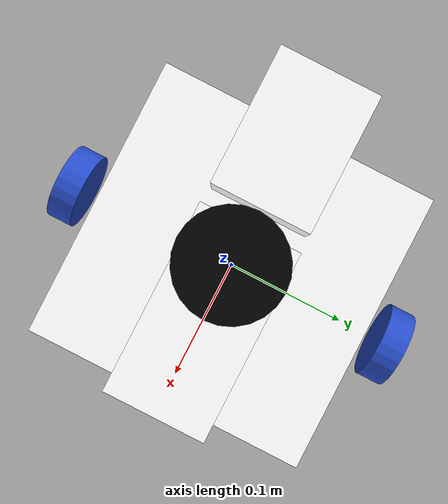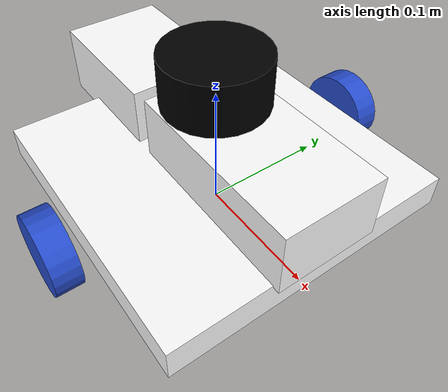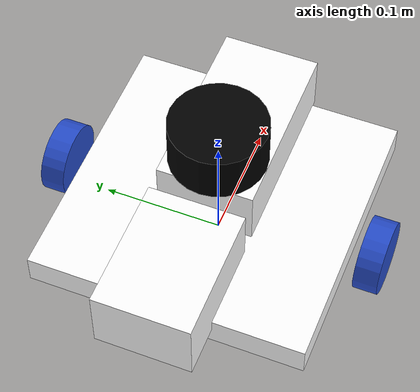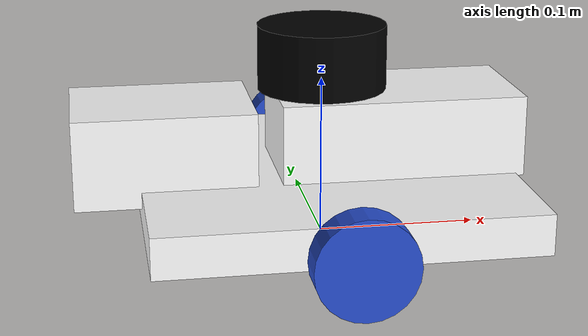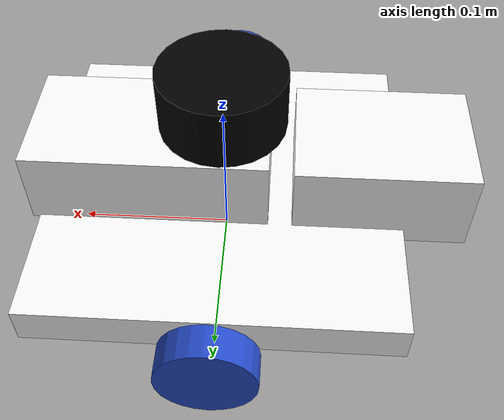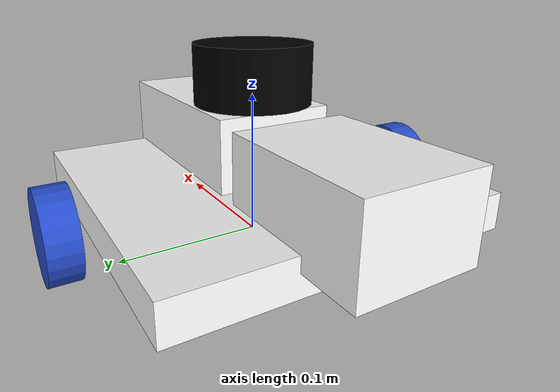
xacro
<?xml version="1.0"?>
<robot xmlns:xacro="http://www.ros.org/wiki/xacro"  name="robot">

    <xacro:arg name="use_ros2_control" default="true" />

    <xacro:if value="$(arg use_ros2_control)">
        <xacro:include filename="ros2_control.xacro" />
    </xacro:if>

    <xacro:unless value="$(arg use_ros2_control)">
        <xacro:include filename="gazebo_control.xacro" />
    </xacro:unless>

    <xacro:include filename="robot_simulation_core.xacro" />
    <xacro:include filename="lidar.xacro" />
</robot>

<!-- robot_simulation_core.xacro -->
<robot xmlns:xacro="http://www.ros.org/wiki/xacro">

    <xacro:include filename="inertial_macros.xacro" />
    <material name="white">
        <color rgba="1 1 1 1" />
    </material>

        <material name="orange">
        <color rgba="1 0.3 0.1 1" />
    </material>

        <material name="blue">
        <color rgba="0.2 0.2 1 1" />
    </material>

        <material name="black">
        <color rgba="0 0 0 1" />
    </material>

    <!-- Base Link -->
    <link name= "base_link">
    </link>

    <!-- Base Footprint Link -->
    <joint name="base_footprint_joint" type="fixed">
        <parent link="base_link" />
        <child link="base_footprint" />
        <origin xyz="0 0 0" rpy="0 0 0" />
    </joint>

    <link name= "base_footprint">
    </link>

    <!-- Chassis Link -->
    <joint name="chassis_joint" type="fixed">
        <parent link="base_link" />
        <child link="chassis"/>
        <origin xyz="0 0 0.0325"/>
    </joint>

    <link name="chassis">
        <visual>
        <origin xyz="0 0 0" />
            <geometry>
                <box size="0.23 0.23 0.025"/>
            </geometry>
            <material name="white"/>
        </visual>
        <collision>
        <origin xyz="0 0 0" />
            <geometry>
                <box size="0.23 0.23 0.025"/>
            </geometry>
            <material name="white"/>
        </collision>
        <xacro:inertial_box mass="0.98" x="0.215" y="0.205" z="0.06">
            <origin xyz="0 0 0" rpy="0 0 0"/>
        </xacro:inertial_box>
    </link>

    <!-- Lidar platform-->
    <joint name="lidar-platform-joint" type="fixed">
        <parent link="chassis" />
        <child link="lidar-platform"/>
        <origin xyz="0.045 0 0.036"/>
    </joint>

    <link name="lidar-platform">
        <visual>
        <origin xyz="0 0 0" />
            <geometry>
                <box size="0.15 0.08 0.05"/>
            </geometry>
            <material name="white"/>
        </visual>
        <collision>
        <origin xyz="0 0 0" />
            <geometry>
                <box size="0.15 0.08 0.05"/>
            </geometry>
            <material name="white"/>
        </collision>
        <xacro:inertial_box mass="0.3" x="0.15" y="0.08" z="0.05">
            <origin xyz="0 0 0" rpy="0 0 0"/>
        </xacro:inertial_box>
    </link>

    <joint name="brain-joint" type="fixed">
        <parent link="chassis" />
        <child link="brain"/>
        <origin xyz="-0.1 0 0.03"/>
    </joint>

    <link name="brain">
        <visual>
        <origin xyz="0 0 0" />
            <geometry>
                <box size="0.11 0.08 0.055"/>
            </geometry>
            <material name="white"/>
        </visual>
        <collision>
        <origin xyz="0 0 0" />
            <geometry>
                <box size="0.11 0.08 0.055"/>
            </geometry>
            <material name="white"/>
        </collision>
        <xacro:inertial_box mass="0.3" x="0.11" y="0.08" z="0.055">
            <origin xyz="0 0 0" rpy="0 0 0"/>
        </xacro:inertial_box>
    </link>

    <!-- left wheel link-->
    <joint name="left-wheel-chassis_joint" type="continuous">
        <parent link="base_link" />
        <child link="left-wheel-chassis"/>
        <origin xyz ="0 0.135 0.03" rpy="-${pi/2} 0 0"/>
        <axis xyz="0 0 1" />
    </joint>
    <link name="left-wheel-chassis">
        <visual>
        <origin xyz="0 0 0" />
            <geometry>
                <cylinder radius="0.03" length="0.02"/>
            </geometry>
        </visual>
        <collision>
        <origin xyz="0 0 0" />
            <geometry>
                <cylinder radius="0.03" length="0.02"/>
            </geometry>
        </collision>
        <xacro:inertial_cylinder mass="0.028" length="0.02" radius="0.03">
            <origin xyz="0 0 0" rpy="0 0 0"/>
        </xacro:inertial_cylinder>
    </link>

    <gazebo reference="left-wheel-chassis">
        <mu1>0.2</mu1>
        <mu2>0.2</mu2>
        <material>Gazebo/Blue</material>
    </gazebo>

    <!-- right wheel link-->
    <joint name="right-wheel-chassis_joint" type="continuous">
        <parent link="base_link" />
        <child link="right-wheel-chassis"/>
        <origin xyz ="0 -0.135 0.03" rpy="-${pi/2} 0 0"/>
        <axis xyz="0 0 1" />
    </joint>
    <link name="right-wheel-chassis">
        <visual>
        <origin xyz="0 0 0" />
            <geometry>
                <cylinder radius="0.03" length="0.02"/>
            </geometry>
        </visual>
        <collision>
        <origin xyz="0 0 0" />
            <geometry>
                <cylinder radius="0.03" length="0.02"/>
            </geometry>
        </collision>
        <xacro:inertial_cylinder mass="0.028" length="0.02" radius="0.03">
            <origin xyz="0 0 0" rpy="0 0 0"/>
        </xacro:inertial_cylinder>
    </link>
    <gazebo reference="right-wheel-chassis">
        <mu1>0.2</mu1>
        <mu2>0.2</mu2>
        <material>Gazebo/Blue</material>
    </gazebo>

    <!-- CASTER WHEEL FRONT LINK -->

    <joint name="caster_wheel_front_joint" type="fixed">
        <parent link="base_link"/>
        <child link="caster_wheel_front"/>
        <origin xyz="0.08 0 0.0301"/>
    </joint>

    <link name="caster_wheel_front">
        <visual>
            <geometry>
                <sphere radius="0.03"/>
            </geometry>
            <material name="white"/>
        </visual>
        <collision>
            <geometry>
                <sphere radius="0.03"/>
            </geometry>
        </collision>
        <xacro:inertial_sphere mass="0.03" radius="0.03">
            <origin xyz="0 0 0" rpy="0 0 0"/>
        </xacro:inertial_sphere>
    </link>

    <gazebo reference="caster_wheel_front">
        <material>Gazebo/White</material>
        <mu1 value="0.00001"/>
        <mu2 value="0.00001"/>
    </gazebo>

    <!-- CASTER WHEEL Back LINK -->

    <joint name="caster_wheel_back_joint" type="fixed">
        <parent link="base_link"/>
        <child link="caster_wheel_back"/>
        <origin xyz="-0.08 0 0.0301"/>
    </joint>

    <link name="caster_wheel_back">
        <visual>
            <geometry>
                <sphere radius="0.03"/>
            </geometry>
            <material name="white"/>
        </visual>
        <collision>
            <geometry>
                <sphere radius="0.03"/>
            </geometry>
        </collision>
        <xacro:inertial_sphere mass="0.03" radius="0.03">
            <origin xyz="0 0 0" rpy="0 0 0"/>
        </xacro:inertial_sphere>
    </link>

    <gazebo reference="caster_wheel_back">
        <material>Gazebo/White</material>
        <mu1 value="0.00001"/>
        <mu2 value="0.00001"/>
    </gazebo>

</robot>

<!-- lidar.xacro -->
<robot xmlns:xacro="http://www.ros.org/wiki/xacro" >

    <joint name="laser_joint" type="fixed">
        <parent link="chassis"/>
        <child link="laser_frame"/>
        <origin xyz="0 0 0.082" rpy="0 0 ${pi/2}"/>
    </joint>

    <link name="laser_frame">
        <visual>
            <geometry>
                <cylinder radius="0.04" length="0.04"/>
            </geometry>
            <material name="black"/>
        </visual>
        <xacro:inertial_cylinder mass="0.4" length="0.04" radius="0.05">
            <origin xyz="0 0 0" rpy="0 0 0"/>
        </xacro:inertial_cylinder>
    </link>

    <gazebo reference="laser_frame">
        <material>Gazebo/Black</material>

        <sensor name="laser" type="gpu_lidar">
            <pose> 0 0 0 0 0 0 </pose>
            <visualize>true</visualize>
            <update_rate>10</update_rate>
            <lidar>
                <scan>
                    <horizontal>
                        <samples>360</samples>
                        <min_angle>-3.14</min_angle>
                        <max_angle>3.14</max_angle>
                    </horizontal>
                </scan>
                <range>
                    <min>0.2</min>
                    <max>12</max>
                </range>
            </lidar>
            <topic>scan</topic>
            <gz_frame_id>laser_frame</gz_frame_id>
        </sensor>
    </gazebo>

</robot>
